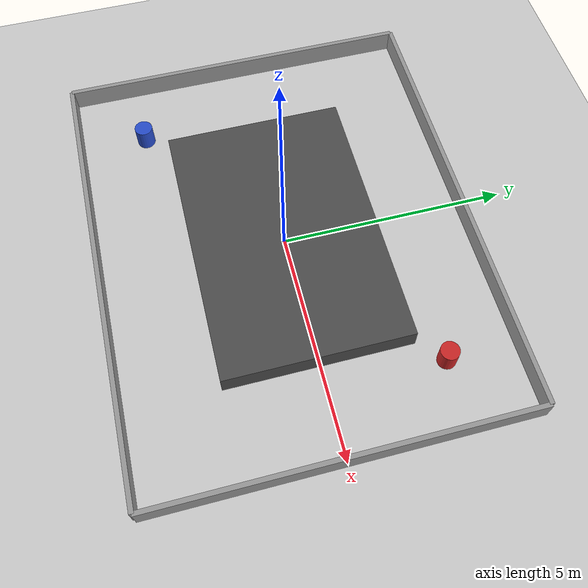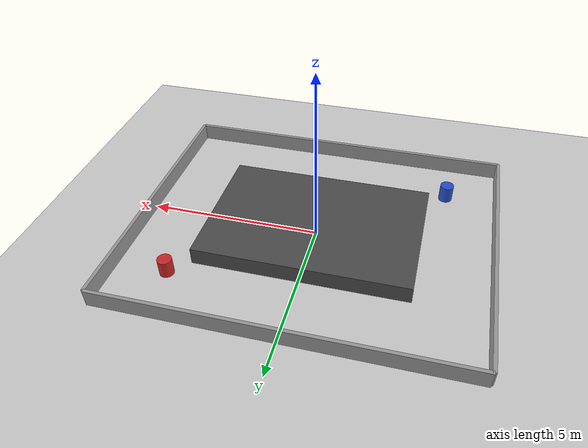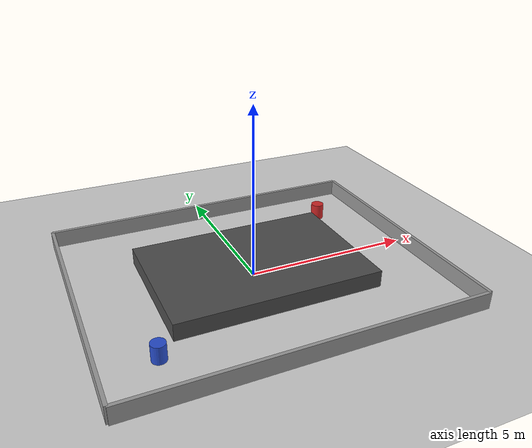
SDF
<?xml version="1.0" ?>
<sdf version="1.6">
  <world name="ackermann_track">

    <!-- Pencahayaan Matahari -->
    <include>
      <uri>model://sun</uri>
    </include>

    <!-- Tanah Rata -->
    <include>
      <uri>model://ground_plane</uri>
    </include>

    <!-- ================= DINDING SEMPADAN LUAR (10m x 8m) ================= -->
    <model name="outer_wall_north">
      <static>true</static>
      <pose>0 4 0.25 0 0 0</pose>
      <link name="link">
        <collision name="collision">
          <geometry><box><size>10.0 0.1 0.5</size></box></geometry>
        </collision>
        <visual name="visual">
          <geometry><box><size>10.0 0.1 0.5</size></box></geometry>
          <material><script><uri>file://media/materials/scripts/gazebo.material</uri><name>Gazebo/Grey</name></script></material>
        </visual>
      </link>
    </model>

    <model name="outer_wall_south">
      <static>true</static>
      <pose>0 -4 0.25 0 0 0</pose>
      <link name="link">
        <collision name="collision">
          <geometry><box><size>10.0 0.1 0.5</size></box></geometry>
        </collision>
        <visual name="visual">
          <geometry><box><size>10.0 0.1 0.5</size></box></geometry>
          <material><script><uri>file://media/materials/scripts/gazebo.material</uri><name>Gazebo/Grey</name></script></material>
        </visual>
      </link>
    </model>

    <model name="outer_wall_east">
      <static>true</static>
      <pose>5 0 0.25 0 0 0</pose>
      <link name="link">
        <collision name="collision">
          <geometry><box><size>0.1 8.0 0.5</size></box></geometry>
        </collision>
        <visual name="visual">
          <geometry><box><size>0.1 8.0 0.5</size></box></geometry>
          <material><script><uri>file://media/materials/scripts/gazebo.material</uri><name>Gazebo/Grey</name></script></material>
        </visual>
      </link>
    </model>

    <model name="outer_wall_west">
      <static>true</static>
      <pose>-5 0 0.25 0 0 0</pose>
      <link name="link">
        <collision name="collision">
          <geometry><box><size>0.1 8.0 0.5</size></box></geometry>
        </collision>
        <visual name="visual">
          <geometry><box><size>0.1 8.0 0.5</size></box></geometry>
          <material><script><uri>file://media/materials/scripts/gazebo.material</uri><name>Gazebo/Grey</name></script></material>
        </visual>
      </link>
    </model>

    <!-- ================= PULAU TENGAH (INNER ISLAND) ================= -->
    <model name="inner_island">
      <static>true</static>
      <pose>0 0 0.25 0 0 0</pose>
      <link name="link">
        <collision name="collision">
          <geometry><box><size>6.0 4.0 0.5</size></box></geometry>
        </collision>
        <visual name="visual">
          <geometry><box><size>6.0 4.0 0.5</size></box></geometry>
          <material><script><uri>file://media/materials/scripts/gazebo.material</uri><name>Gazebo/DarkGrey</name></script></material>
        </visual>
      </link>
    </model>

    <!-- ================= HALANGAN (OBSTACLE PILLARS) ================= -->
    <model name="obstacle_pillar_1">
      <static>true</static>
      <pose>3.5 2.5 0.25 0 0 0</pose>
      <link name="link">
        <collision name="collision">
          <geometry><cylinder><radius>0.2</radius><length>0.5</length></cylinder></geometry>
        </collision>
        <visual name="visual">
          <geometry><cylinder><radius>0.2</radius><length>0.5</length></cylinder></geometry>
          <material><script><uri>file://media/materials/scripts/gazebo.material</uri><name>Gazebo/Red</name></script></material>
        </visual>
      </link>
    </model>

    <model name="obstacle_pillar_2">
      <static>true</static>
      <pose>-3.5 -2.5 0.25 0 0 0</pose>
      <link name="link">
        <collision name="collision">
          <geometry><cylinder><radius>0.2</radius><length>0.5</length></cylinder></geometry>
        </collision>
        <visual name="visual">
          <geometry><cylinder><radius>0.2</radius><length>0.5</length></cylinder></geometry>
          <material><script><uri>file://media/materials/scripts/gazebo.material</uri><name>Gazebo/Blue</name></script></material>
        </visual>
      </link>
    </model>

  </world>
</sdf>
